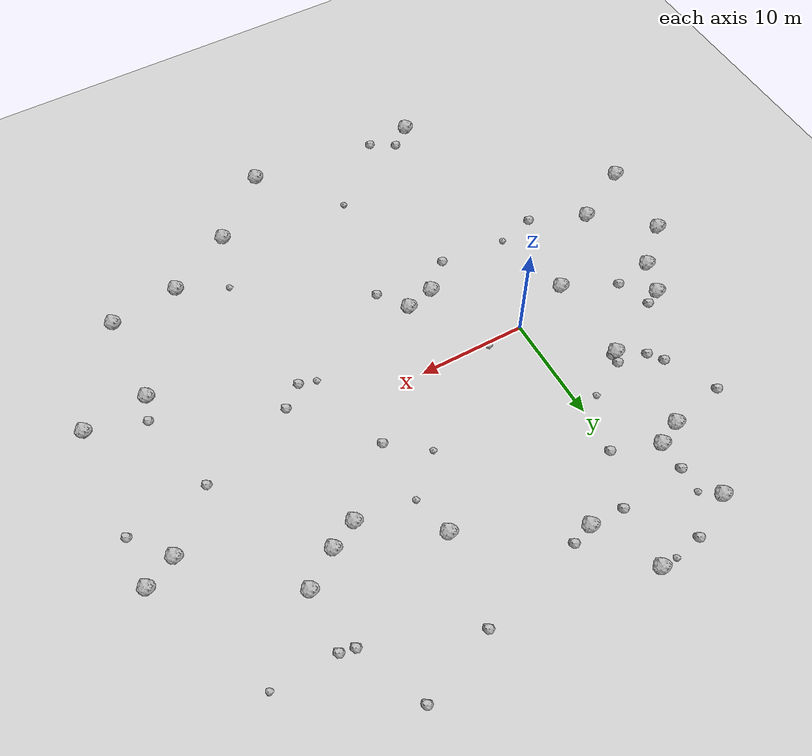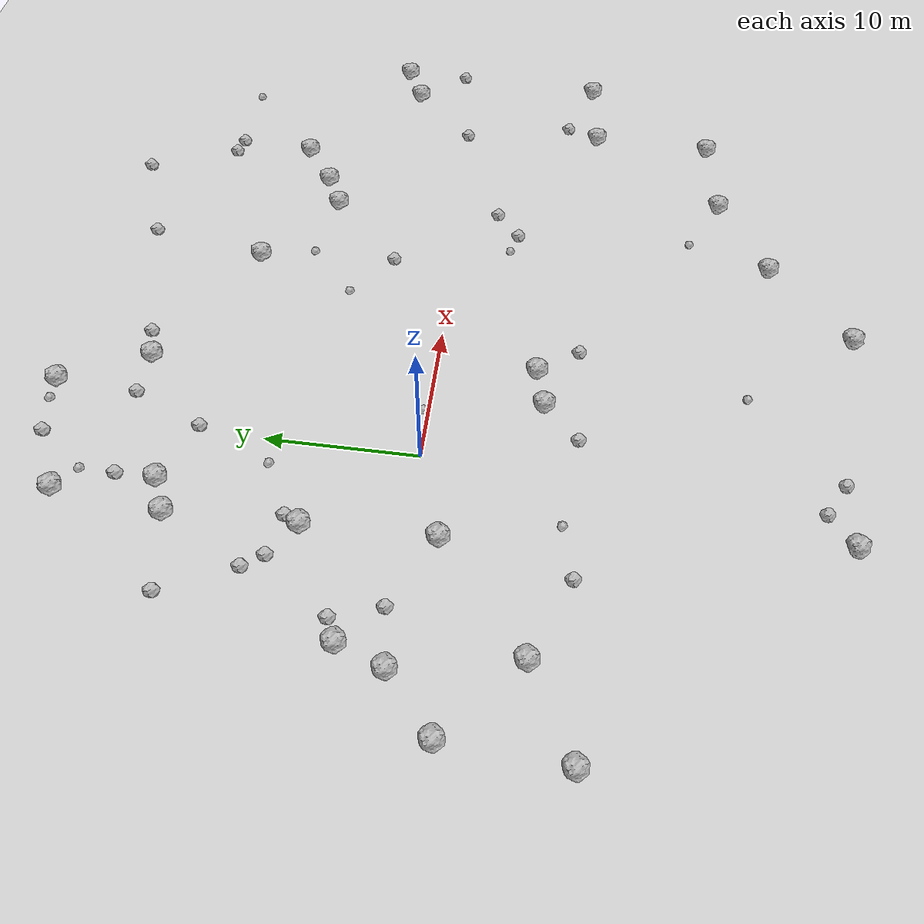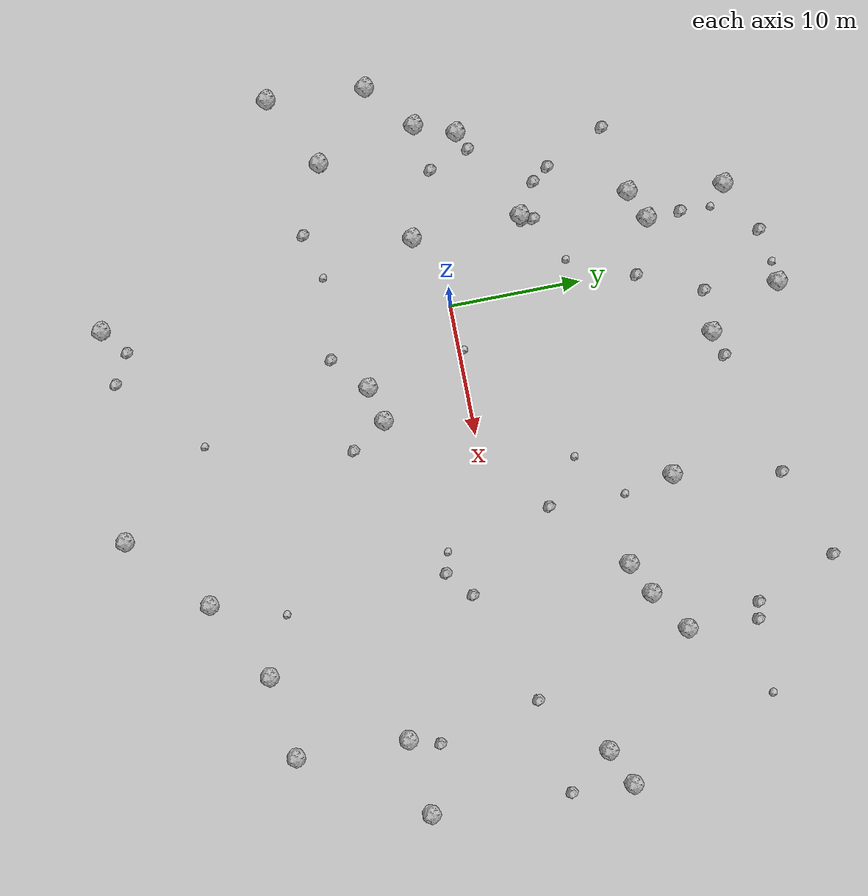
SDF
<sdf version="1.6">
 <world name="default">
  <include><uri>model://custom_ground</uri></include>
  <include><uri>model://sun</uri></include>
  <model name="rock1_0_0">
   <include><uri>model://rock1</uri><pose>-17.915404779759147 -10.806029402420169 0.5 0 0 0</pose></include>
  </model>
  <model name="rock1_0_1">
   <include><uri>model://rock1</uri><pose>2.9134768158623885 24.679286409674354 0.5 0 0 0</pose></include>
  </model>
  <model name="rock1_0_2">
   <include><uri>model://rock1</uri><pose>-3.705516055684562 15.855797608863426 0.5 0 0 0</pose></include>
  </model>
  <model name="rock1_0_3">
   <include><uri>model://rock1</uri><pose>37.64154435634173 -8.718711251509635 0.5 0 0 0</pose></include>
  </model>
  <model name="rock1_0_4">
   <include><uri>model://rock1</uri><pose>-5.951408935199577 14.798947788764977 0.5 0 0 0</pose></include>
  </model>
  <model name="rock1_0_5">
   <include><uri>model://rock1</uri><pose>38.308753995326875 6.773752560092902 0.5 0 0 0</pose></include>
  </model>
  <model name="rock1_0_6">
   <include><uri>model://rock1</uri><pose>35.434587126131646 5.417240247349774 0.5 0 0 0</pose></include>
  </model>
  <model name="rock1_0_7">
   <include><uri>model://rock1</uri><pose>21.824181921714406 9.603411171974464 0.5 0 0 0</pose></include>
  </model>
  <model name="rock1_0_8">
   <include><uri>model://rock1</uri><pose>5.700219949162072 19.074657103640376 0.5 0 0 0</pose></include>
  </model>
  <model name="rock1_0_9">
   <include><uri>model://rock1</uri><pose>15.765515057922912 14.105280686788973 0.5 0 0 0</pose></include>
  </model>
  <model name="rock1_0_10">
   <include><uri>model://rock1</uri><pose>31.768130179791243 -9.35963275134776 0.5 0 0 0</pose></include>
  </model>
  <model name="rock1_0_11">
   <include><uri>model://rock1</uri><pose>7.6408392003457415 -6.62398424471861 0.5 0 0 0</pose></include>
  </model>
  <model name="rock1_0_12">
   <include><uri>model://rock1</uri><pose>-12.808781390569328 2.8477196562167535 0.5 0 0 0</pose></include>
  </model>
  <model name="rock1_0_13">
   <include><uri>model://rock1</uri><pose>31.482870572075868 -17.985838286660425 0.5 0 0 0</pose></include>
  </model>
  <model name="rock1_0_14">
   <include><uri>model://rock1</uri><pose>-3.100586573590011 -26.39039809620051 0.5 0 0 0</pose></include>
  </model>
  <model name="rock1_0_15">
   <include><uri>model://rock1</uri><pose>18.887100328799875 -22.239854302606826 0.5 0 0 0</pose></include>
  </model>
  <model name="rock1_0_16">
   <include><uri>model://rock1</uri><pose>24.32207438233774 10.857487320000374 0.5 0 0 0</pose></include>
  </model>
  <model name="rock1_0_17">
   <include><uri>model://rock1</uri><pose>-5.554692438989559 -1.9125708159594481 0.5 0 0 0</pose></include>
  </model>
  <model name="rock1_0_18">
   <include><uri>model://rock1</uri><pose>-17.429728130830412 -3.301483436276861 0.5 0 0 0</pose></include>
  </model>
  <model name="rock1_0_19">
   <include><uri>model://rock1</uri><pose>25.086317144791096 -18.799839926142234 0.5 0 0 0</pose></include>
  </model>
  <model name="rock1_0_20">
   <include><uri>model://rock1</uri><pose>-5.732147861724357 6.444066927411001 0.5 0 0 0</pose></include>
  </model>
  <model name="rock1_0_21">
   <include><uri>model://rock1</uri><pose>4.940531705244609 -7.321453776041903 0.5 0 0 0</pose></include>
  </model>
  <model name="rock1_0_22">
   <include><uri>model://rock1</uri><pose>27.464352516778582 13.050335052906775 0.5 0 0 0</pose></include>
  </model>
  <model name="rock1_0_23">
   <include><uri>model://rock1</uri><pose>-5.163921175274442 22.039840157796313 0.5 0 0 0</pose></include>
  </model>
  <model name="rock1_0_24">
   <include><uri>model://rock1</uri><pose>12.957842016554736 -27.634805316818937 0.5 0 0 0</pose></include>
  </model>
  <model name="rock1_0_25">
   <include><uri>model://rock1</uri><pose>-13.938599539077918 -0.19528708638218717 0.5 0 0 0</pose></include>
  </model>
  <model name="rock1_0_26">
   <include><uri>model://rock1</uri><pose>-12.446186286647102 -7.804175507952511 0.5 0 0 0</pose></include>
  </model>
  <model name="rock2_0_0">
   <include><uri>model://rock2</uri><pose>-7.381698312688398 -10.009308858674192 0.3 0 0 0</pose></include>
  </model>
  <model name="rock2_0_1">
   <include><uri>model://rock2</uri><pose>9.436453387917858 -9.326652428812462 0.3 0 0 0</pose></include>
  </model>
  <model name="rock2_0_2">
   <include><uri>model://rock2</uri><pose>7.603731748901378 19.735399528841832 0.3 0 0 0</pose></include>
  </model>
  <model name="rock2_0_3">
   <include><uri>model://rock2</uri><pose>-1.270191283398244 24.11665229018641 0.3 0 0 0</pose></include>
  </model>
  <model name="rock2_0_4">
   <include><uri>model://rock2</uri><pose>-8.08683942244915 7.93322161906589 0.3 0 0 0</pose></include>
  </model>
  <model name="rock2_0_5">
   <include><uri>model://rock2</uri><pose>-3.772994763254271 18.486835318943086 0.3 0 0 0</pose></include>
  </model>
  <model name="rock2_0_6">
   <include><uri>model://rock2</uri><pose>-10.42603133991857 0.4157483828914508 0.3 0 0 0</pose></include>
  </model>
  <model name="rock2_0_7">
   <include><uri>model://rock2</uri><pose>38.082482791660105 2.037889189184895 0.3 0 0 0</pose></include>
  </model>
  <model name="rock2_0_8">
   <include><uri>model://rock2</uri><pose>-11.465794083890557 3.524127675324195 0.3 0 0 0</pose></include>
  </model>
  <model name="rock2_0_9">
   <include><uri>model://rock2</uri><pose>-5.327820094276166 7.43781459586959 0.3 0 0 0</pose></include>
  </model>
  <model name="rock2_0_10">
   <include><uri>model://rock2</uri><pose>17.141164262573973 22.349643652693423 0.3 0 0 0</pose></include>
  </model>
  <model name="rock2_0_11">
   <include><uri>model://rock2</uri><pose>26.500757212661988 18.756590823409475 0.3 0 0 0</pose></include>
  </model>
  <model name="rock2_0_12">
   <include><uri>model://rock2</uri><pose>-11.157665194109576 13.80779199497119 0.3 0 0 0</pose></include>
  </model>
  <model name="rock2_0_13">
   <include><uri>model://rock2</uri><pose>-8.999601979666714 9.19882113775622 0.3 0 0 0</pose></include>
  </model>
  <model name="rock2_0_14">
   <include><uri>model://rock2</uri><pose>-1.1600595928010975 -24.834326786239863 0.3 0 0 0</pose></include>
  </model>
  <model name="rock2_0_15">
   <include><uri>model://rock2</uri><pose>1.0496747323392484 -26.1401671699154 0.3 0 0 0</pose></include>
  </model>
  <model name="rock2_0_16">
   <include><uri>model://rock2</uri><pose>24.008757408986078 24.98376965410145 0.3 0 0 0</pose></include>
  </model>
  <model name="rock2_0_17">
   <include><uri>model://rock2</uri><pose>27.78649872567197 18.47477366144186 0.3 0 0 0</pose></include>
  </model>
  <model name="rock2_0_18">
   <include><uri>model://rock2</uri><pose>0.3490646558229713 14.310133800852881 0.3 0 0 0</pose></include>
  </model>
  <model name="rock2_0_19">
   <include><uri>model://rock2</uri><pose>21.905756854306205 -2.4931369859961237 0.3 0 0 0</pose></include>
  </model>
  <model name="rock2_0_20">
   <include><uri>model://rock2</uri><pose>32.528781950174206 -7.059897898410192 0.3 0 0 0</pose></include>
  </model>
  <model name="rock2_0_21">
   <include><uri>model://rock2</uri><pose>-5.33157113084612 6.559916064209112 0.3 0 0 0</pose></include>
  </model>
  <model name="rock2_0_22">
   <include><uri>model://rock2</uri><pose>30.69888750343683 0.8715522596124714 0.3 0 0 0</pose></include>
  </model>
  <model name="rock2_0_23">
   <include><uri>model://rock2</uri><pose>19.898680970585062 -4.193612493056158 0.3 0 0 0</pose></include>
  </model>
  <model name="rock2_0_24">
   <include><uri>model://rock2</uri><pose>16.40228246426311 4.4598856183868705 0.3 0 0 0</pose></include>
  </model>
  <model name="rock2_0_25">
   <include><uri>model://rock2</uri><pose>2.4652573938654783 19.143670955984 0.3 0 0 0</pose></include>
  </model>
  <model name="rock2_0_26">
   <include><uri>model://rock2</uri><pose>2.3087428661384983 -9.714995238402945 0.3 0 0 0</pose></include>
  </model>
  <model name="rock3_0_0">
   <include><uri>model://rock3</uri><pose>-3.934836338782226 -9.1661398082013 0.2 0 0 0</pose></include>
  </model>
  <model name="rock3_0_1">
   <include><uri>model://rock3</uri><pose>18.324956722576665 -3.7846010518416477 0.2 0 0 0</pose></include>
  </model>
  <model name="rock3_0_2">
   <include><uri>model://rock3</uri><pose>20.694548294289795 -16.707713659507952 0.2 0 0 0</pose></include>
  </model>
  <model name="rock3_0_3">
   <include><uri>model://rock3</uri><pose>-1.8231470996980192 9.240548230919352 0.2 0 0 0</pose></include>
  </model>
  <model name="rock3_0_4">
   <include><uri>model://rock3</uri><pose>3.463788120244253 0.33245987227267904 0.2 0 0 0</pose></include>
  </model>
  <model name="rock3_0_5">
   <include><uri>model://rock3</uri><pose>33.49976979422271 18.509316721601266 0.2 0 0 0</pose></include>
  </model>
  <model name="rock3_0_6">
   <include><uri>model://rock3</uri><pose>13.028278861214673 7.053803676790409 0.2 0 0 0</pose></include>
  </model>
  <model name="rock3_0_7">
   <include><uri>model://rock3</uri><pose>6.9692317602007705 -20.436744161566637 0.2 0 0 0</pose></include>
  </model>
  <model name="rock3_0_8">
   <include><uri>model://rock3</uri><pose>16.52677278529721 10.29660343689499 0.2 0 0 0</pose></include>
  </model>
  <model name="rock3_0_9">
   <include><uri>model://rock3</uri><pose>-3.6997994233785434 20.80443742855941 0.2 0 0 0</pose></include>
  </model>
  <model name="rock3_0_10">
   <include><uri>model://rock3</uri><pose>1.2932564304546688 24.601269103559908 0.2 0 0 0</pose></include>
  </model>
 </world>
</sdf>
